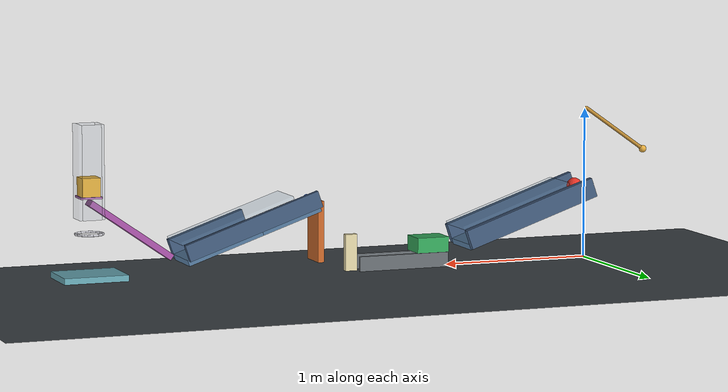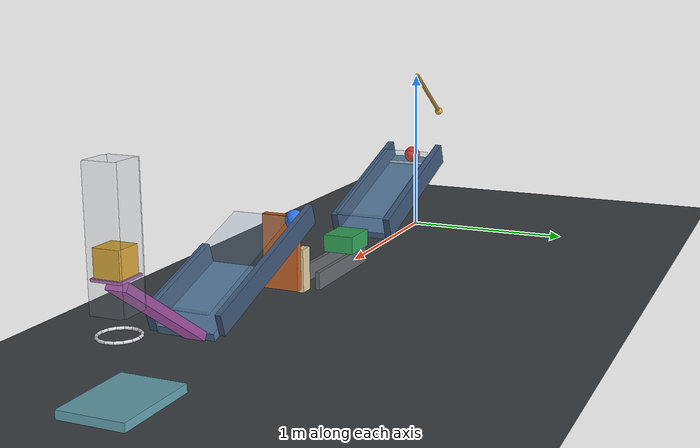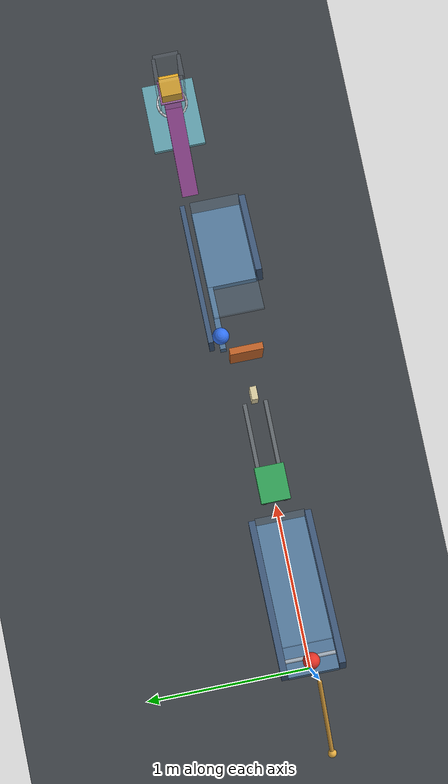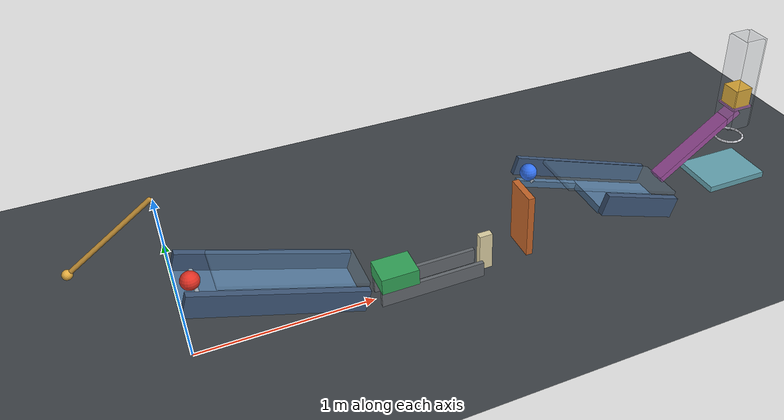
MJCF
<mujoco model="passive_chain">
  <compiler angle="degree" autolimits="true"/>
  <option timestep="0.002" gravity="0 0 -9.81" integrator="implicitfast" solver="Newton" iterations="100" tolerance="1e-10"/>
  <size njmax="3000" nconmax="800"/>
  <visual>
    <global azimuth="135" elevation="-20"/>
    <headlight ambient="0.35 0.35 0.35" diffuse="0.65 0.65 0.65" specular="0.15 0.15 0.15"/>
  </visual>

  <!-- solref damping ratio 0.6901 approximates restitution 0.05. -->
  <!-- Tangential friction is 0.68; the other friction entries are torsional and rolling friction. -->
  <!-- All dynamic bodies start with zero velocity. No actuators or timed controls are used. -->

  <worldbody>
    <light name="main_light" pos="1.5 -3 5" dir="0 0 -1"/>
    <camera name="overview" pos="2 -5 2.8" xyaxes="1 0 0 0 0.4 0.916515"/>
    <geom name="floor" type="plane" size="6 3 0.1" condim="6" friction="0.68 0.005 0.001" solref="0.006 0.6901" solimp="0.95 0.99 0.001" rgba="0.24 0.26 0.28 1"/>

    <!-- The pendulum's initial body rotation is its 55-degree release angle. -->
    <!-- Its pivot-to-lowest-point length is 0.55 m; total mass is 0.40 kg. -->
    <body name="pendulum1" pos="-0.001991 0 1.012032" quat="0.887010833 0 0.461748613 0">
      <joint name="pendulum1_hinge" type="hinge" axis="0 1 0" range="-110 0" damping="0.04" solreflimit="0.004 1" solimplimit="0.99 0.999 0.0001"/>
      <geom name="pendulum1_rod" type="capsule" fromto="0 0 -0.012 0 0 -0.510" size="0.012" mass="0.10" friction="0.68 0.005 0.001" solref="0.006 0.6901" solimp="0.95 0.99 0.001" rgba="0.75 0.55 0.20 1"/>
      <geom name="pendulum1_tip" type="sphere" pos="0 0 -0.525" size="0.025" mass="0.30" friction="0.68 0.005 0.001" solref="0.006 0.6901" solimp="0.95 0.99 0.001" rgba="0.90 0.68 0.25 1"/>
    </body>

    <body name="ball1" pos="0.073009 0 0.487032">
      <freejoint name="ball1_free"/>
      <geom name="ball1_geom" type="sphere" size="0.05" mass="0.20" condim="6" friction="0.68 0.005 0.001" solref="0.006 0.6901" solimp="0.95 0.99 0.001" rgba="0.90 0.20 0.15 1"/>
    </body>

    <!-- Deck length 0.95 m, width 0.30 m, inclination 19 degrees. -->
    <!-- The deck's low-end upper surface is at z=0.15 m. -->
    <!-- A small transverse chock holds the initially stationary ball until struck. -->
    <body name="ramp1" pos="0.442610 0 0.285735" quat="0.986285602 0 0.165047606 0">
      <geom name="ramp1_deck" type="box" size="0.475 0.15 0.02" friction="0.68 0.005 0.001" solref="0.006 0.6901" solimp="0.95 0.99 0.001" rgba="0.32 0.46 0.60 1"/>
      <geom name="ramp1_chock" type="cylinder" fromto="-0.378339 -0.15 0.02 -0.378339 0.15 0.02" size="0.012" friction="0.68 0.005 0.001" solref="0.006 0.6901" solimp="0.95 0.99 0.001" rgba="0.65 0.70 0.75 1"/>
      <geom name="ramp1_left_rail" type="box" pos="0 -0.17 0.055" size="0.475 0.02 0.065" friction="0.68 0.005 0.001" solref="0.006 0.6901" solimp="0.95 0.99 0.001" rgba="0.25 0.35 0.48 1"/>
      <geom name="ramp1_right_rail" type="box" pos="0 0.17 0.055" size="0.475 0.02 0.065" friction="0.68 0.005 0.001" solref="0.006 0.6901" solimp="0.95 0.99 0.001" rgba="0.25 0.35 0.48 1"/>
      <geom name="ramp1_upper_guard" type="box" pos="0.075 0 0.135" size="0.40 0.15 0.01" friction="0.68 0.005 0.001" solref="0.006 0.6901" solimp="0.95 0.99 0.001" rgba="0.45 0.62 0.75 0.22"/>
    </body>

    <!-- Ramp exit to initial cart face: 0.12 m. -->
    <!-- The ideal slide supports the cart; the visible rails have 3 mm clearance. -->
    <body name="cart1" pos="1.128243 0 0.15">
      <joint name="cart1_slide" type="slide" axis="1 0 0" range="0 0.40" damping="0.20" solreflimit="0.012 1" solimplimit="0.95 0.99 0.001"/>
      <geom name="cart1_geom" type="box" size="0.11 0.09 0.05" mass="0.50" friction="0.68 0.005 0.001" solref="0.006 0.6901" solimp="0.95 0.99 0.001" rgba="0.20 0.65 0.35 1"/>
    </body>

    <body name="cart1_track" pos="1.328243 0 0">
      <geom name="cart1_track_left" type="box" pos="0 -0.065 0.0485" size="0.31 0.012 0.0485" friction="0.68 0.005 0.001" solref="0.006 0.6901" solimp="0.95 0.99 0.001" rgba="0.40 0.42 0.44 1"/>
      <geom name="cart1_track_right" type="box" pos="0 0.065 0.0485" size="0.31 0.012 0.0485" friction="0.68 0.005 0.001" solref="0.006 0.6901" solimp="0.95 0.99 0.001" rgba="0.40 0.42 0.44 1"/>
    </body>

    <body name="domino1" pos="1.678243 0 0.12">
      <freejoint name="domino1_free"/>
      <geom name="domino1_geom" type="box" size="0.04 0.02 0.12" mass="0.25" friction="0.68 0.005 0.001" solref="0.006 0.6901" solimp="0.95 0.99 0.001" rgba="0.88 0.83 0.65 1"/>
    </body>

    <!-- The gap from the domino's forward floor edge to the flap face is 0.18 m. -->
    <body name="flap1" pos="1.918243 0 0.08">
      <joint name="flap1_hinge" type="hinge" axis="0 1 0" range="0 65" damping="0.04" solreflimit="0.004 1" solimplimit="0.99 0.999 0.0001"/>
      <geom name="flap1_geom" type="box" pos="0 0 0.20" size="0.02 0.10 0.20" mass="0.30" friction="0.68 0.005 0.001" solref="0.006 0.6901" solimp="0.95 0.99 0.001" rgba="0.78 0.40 0.16 1"/>
    </body>

    <body name="ball2" pos="2.018252 0.1325 0.487032">
      <freejoint name="ball2_free"/>
      <geom name="ball2_geom" type="sphere" size="0.05" mass="0.20" condim="6" friction="0.68 0.005 0.001" solref="0.006 0.6901" solimp="0.95 0.99 0.001" rgba="0.20 0.45 0.95 1"/>
    </body>

    <!-- The narrow upper strip leaves clearance for the flap's complete sweep. -->
    <!-- The lower deck spans the full specified 0.30 m width. -->
    <body name="ramp2" pos="2.387853 0 0.285735" quat="0.986285602 0 0.165047606 0">
      <geom name="ramp2_upper_strip" type="box" pos="-0.265 0.1325 0" size="0.21 0.0175 0.02" friction="0.68 0.005 0.001" solref="0.006 0.6901" solimp="0.95 0.99 0.001" rgba="0.32 0.46 0.60 1"/>
      <geom name="ramp2_lower_deck" type="box" pos="0.21 0 0" size="0.265 0.15 0.02" friction="0.68 0.005 0.001" solref="0.006 0.6901" solimp="0.95 0.99 0.001" rgba="0.32 0.46 0.60 1"/>
      <geom name="ramp2_chock" type="cylinder" fromto="-0.378339 0.115 0.02 -0.378339 0.15 0.02" size="0.012" friction="0.68 0.005 0.001" solref="0.006 0.6901" solimp="0.95 0.99 0.001" rgba="0.65 0.70 0.75 1"/>
      <geom name="ramp2_outer_rail" type="box" pos="0 0.1975 0.075" size="0.475 0.015 0.055" friction="0.68 0.005 0.001" solref="0.006 0.6901" solimp="0.95 0.99 0.001" rgba="0.25 0.35 0.48 1"/>
      <geom name="ramp2_lower_inner_rail" type="box" pos="0.21 -0.17 0.055" size="0.265 0.02 0.065" friction="0.68 0.005 0.001" solref="0.006 0.6901" solimp="0.95 0.99 0.001" rgba="0.25 0.35 0.48 1"/>
      <geom name="ramp2_upper_guard" type="box" pos="0.075 0 0.135" size="0.40 0.15 0.01" friction="0.68 0.005 0.001" solref="0.006 0.6901" solimp="0.95 0.99 0.001" rgba="0.45 0.62 0.75 0.22"/>
    </body>

    <!-- The seesaw starts inclined 35 degrees, with its left end beside the ramp exit. -->
    <!-- Its leftmost beam surface is 0.10 m beyond the ramp exit. -->
    <!-- Positive hinge motion raises the loaded end; the sign is set by the hinge axis. -->
    <!-- A passive preloaded spring assists launch. The loaded beam rests at its lower stop. -->
    <!-- Beam and carrying shelf together have mass 0.55 kg. -->
    <body name="seesaw1" pos="3.221182 0.1325 0.366412" quat="0.953716951 0 -0.300705800 0">
      <joint name="seesaw1_hinge" type="hinge" axis="0 -1 0" range="0 40" damping="0.04" stiffness="0.50" springref="112" solreflimit="0.004 1" solimplimit="0.99 0.999 0.0001"/>
      <geom name="seesaw1_beam" type="box" size="0.325 0.05 0.02" mass="0.52" friction="0.68 0.005 0.001" solref="0.006 0.6901" solimp="0.95 0.99 0.001" rgba="0.65 0.32 0.65 1"/>
      <geom name="seesaw1_shelf" type="box" pos="0.345075 0 0.028670" quat="0.953716951 0 0.300705800 0" size="0.07 0.07 0.006" mass="0.03" friction="0.68 0.005 0.001" solref="0.006 0.6901" solimp="0.95 0.99 0.001" rgba="0.72 0.42 0.72 1"/>
    </body>

    <body name="block1" pos="3.487406 0.1325 0.653825">
      <freejoint name="block1_free"/>
      <geom name="block1_geom" type="box" size="0.06 0.06 0.06" mass="0.35" contype="3" conaffinity="3" friction="0.68 0.005 0.001" solref="0.006 0.6901" solimp="0.95 0.99 0.001" rgba="0.95 0.70 0.15 1"/>
    </body>

    <!-- A passive vertical guide keeps the free block over its initial horizontal position. -->
    <!-- Collision bit 2 makes these guide surfaces interact with block1, not the moving shelf. -->
    <body name="block1_guide" pos="3.487406 0.1325 0.75">
      <geom name="block1_guide_left" type="box" pos="-0.072 0 0" size="0.01 0.072 0.30" contype="2" conaffinity="2" friction="0.68 0.005 0.001" solref="0.006 0.6901" solimp="0.95 0.99 0.001" rgba="0.55 0.60 0.65 0.20"/>
      <geom name="block1_guide_right" type="box" pos="0.072 0 0" size="0.01 0.072 0.30" contype="2" conaffinity="2" friction="0.68 0.005 0.001" solref="0.006 0.6901" solimp="0.95 0.99 0.001" rgba="0.55 0.60 0.65 0.20"/>
      <geom name="block1_guide_front" type="box" pos="0 -0.072 0" size="0.062 0.01 0.30" contype="2" conaffinity="2" friction="0.68 0.005 0.001" solref="0.006 0.6901" solimp="0.95 0.99 0.001" rgba="0.55 0.60 0.65 0.20"/>
      <geom name="block1_guide_back" type="box" pos="0 0.072 0" size="0.062 0.01 0.30" contype="2" conaffinity="2" friction="0.68 0.005 0.001" solref="0.006 0.6901" solimp="0.95 0.99 0.001" rgba="0.55 0.60 0.65 0.20"/>
    </body>

    <!-- Horizontal ring, centered exactly 0.30 m below block1's initial center. -->
    <!-- Sixteen capsule segments give an inscribed clear diameter of 0.16 m. -->
    <!-- This opening is intentionally not enlarged to hide the cube/ring incompatibility. -->
    <body name="ring1" pos="3.487406 0.1325 0.353825">
      <geom name="ring1_segment01" type="capsule" fromto="0.088704 0 0 0.081952 0.033945 0" size="0.007" friction="0.68 0.005 0.001" solref="0.006 0.6901" solimp="0.95 0.99 0.001" rgba="0.85 0.85 0.88 1"/>
      <geom name="ring1_segment02" type="capsule" fromto="0.081952 0.033945 0 0.062724 0.062724 0" size="0.007" friction="0.68 0.005 0.001" solref="0.006 0.6901" solimp="0.95 0.99 0.001" rgba="0.85 0.85 0.88 1"/>
      <geom name="ring1_segment03" type="capsule" fromto="0.062724 0.062724 0 0.033945 0.081952 0" size="0.007" friction="0.68 0.005 0.001" solref="0.006 0.6901" solimp="0.95 0.99 0.001" rgba="0.85 0.85 0.88 1"/>
      <geom name="ring1_segment04" type="capsule" fromto="0.033945 0.081952 0 0 0.088704 0" size="0.007" friction="0.68 0.005 0.001" solref="0.006 0.6901" solimp="0.95 0.99 0.001" rgba="0.85 0.85 0.88 1"/>
      <geom name="ring1_segment05" type="capsule" fromto="0 0.088704 0 -0.033945 0.081952 0" size="0.007" friction="0.68 0.005 0.001" solref="0.006 0.6901" solimp="0.95 0.99 0.001" rgba="0.85 0.85 0.88 1"/>
      <geom name="ring1_segment06" type="capsule" fromto="-0.033945 0.081952 0 -0.062724 0.062724 0" size="0.007" friction="0.68 0.005 0.001" solref="0.006 0.6901" solimp="0.95 0.99 0.001" rgba="0.85 0.85 0.88 1"/>
      <geom name="ring1_segment07" type="capsule" fromto="-0.062724 0.062724 0 -0.081952 0.033945 0" size="0.007" friction="0.68 0.005 0.001" solref="0.006 0.6901" solimp="0.95 0.99 0.001" rgba="0.85 0.85 0.88 1"/>
      <geom name="ring1_segment08" type="capsule" fromto="-0.081952 0.033945 0 -0.088704 0 0" size="0.007" friction="0.68 0.005 0.001" solref="0.006 0.6901" solimp="0.95 0.99 0.001" rgba="0.85 0.85 0.88 1"/>
      <geom name="ring1_segment09" type="capsule" fromto="-0.088704 0 0 -0.081952 -0.033945 0" size="0.007" friction="0.68 0.005 0.001" solref="0.006 0.6901" solimp="0.95 0.99 0.001" rgba="0.85 0.85 0.88 1"/>
      <geom name="ring1_segment10" type="capsule" fromto="-0.081952 -0.033945 0 -0.062724 -0.062724 0" size="0.007" friction="0.68 0.005 0.001" solref="0.006 0.6901" solimp="0.95 0.99 0.001" rgba="0.85 0.85 0.88 1"/>
      <geom name="ring1_segment11" type="capsule" fromto="-0.062724 -0.062724 0 -0.033945 -0.081952 0" size="0.007" friction="0.68 0.005 0.001" solref="0.006 0.6901" solimp="0.95 0.99 0.001" rgba="0.85 0.85 0.88 1"/>
      <geom name="ring1_segment12" type="capsule" fromto="-0.033945 -0.081952 0 0 -0.088704 0" size="0.007" friction="0.68 0.005 0.001" solref="0.006 0.6901" solimp="0.95 0.99 0.001" rgba="0.85 0.85 0.88 1"/>
      <geom name="ring1_segment13" type="capsule" fromto="0 -0.088704 0 0.033945 -0.081952 0" size="0.007" friction="0.68 0.005 0.001" solref="0.006 0.6901" solimp="0.95 0.99 0.001" rgba="0.85 0.85 0.88 1"/>
      <geom name="ring1_segment14" type="capsule" fromto="0.033945 -0.081952 0 0.062724 -0.062724 0" size="0.007" friction="0.68 0.005 0.001" solref="0.006 0.6901" solimp="0.95 0.99 0.001" rgba="0.85 0.85 0.88 1"/>
      <geom name="ring1_segment15" type="capsule" fromto="0.062724 -0.062724 0 0.081952 -0.033945 0" size="0.007" friction="0.68 0.005 0.001" solref="0.006 0.6901" solimp="0.95 0.99 0.001" rgba="0.85 0.85 0.88 1"/>
      <geom name="ring1_segment16" type="capsule" fromto="0.081952 -0.033945 0 0.088704 0 0" size="0.007" friction="0.68 0.005 0.001" solref="0.006 0.6901" solimp="0.95 0.99 0.001" rgba="0.85 0.85 0.88 1"/>
    </body>

    <!-- Horizontal hinged door; its upper face is 0.25 m below the ring plane. -->
    <!-- A passive spring holds it at its initial stop until a downward impact. -->
    <body name="door1" pos="3.277406 0.1325 0.083825">
      <joint name="door1_hinge" type="hinge" axis="0 1 0" range="0 8" damping="0.04" stiffness="1.50" springref="-40" solreflimit="0.004 1" solimplimit="0.99 0.999 0.0001"/>
      <geom name="door1_geom" type="box" pos="0.21 0 0" size="0.21 0.16 0.02" mass="0.45" friction="0.68 0.005 0.001" solref="0.006 0.6901" solimp="0.95 0.99 0.001" rgba="0.40 0.65 0.70 1"/>
    </body>
  </worldbody>

  <keyframe>
    <key name="start"/>
  </keyframe>
</mujoco>
